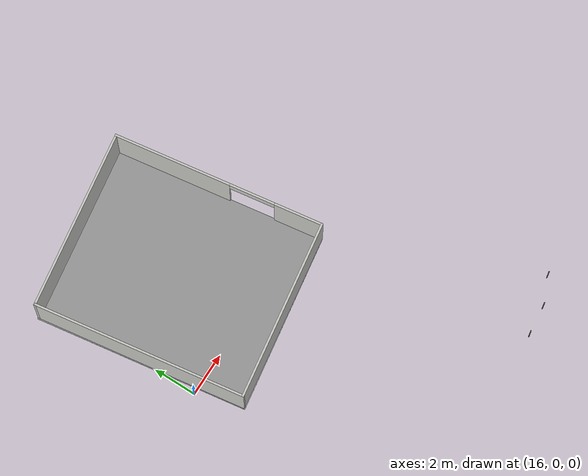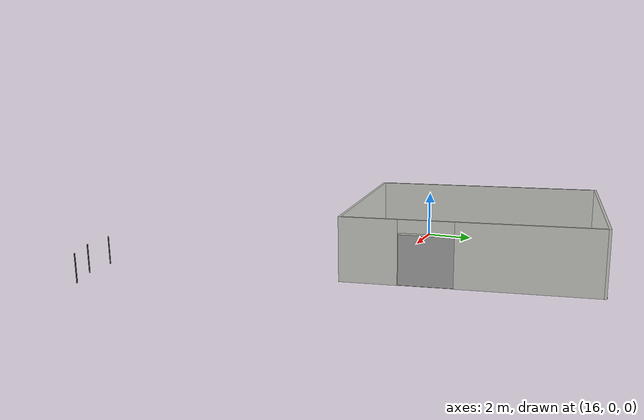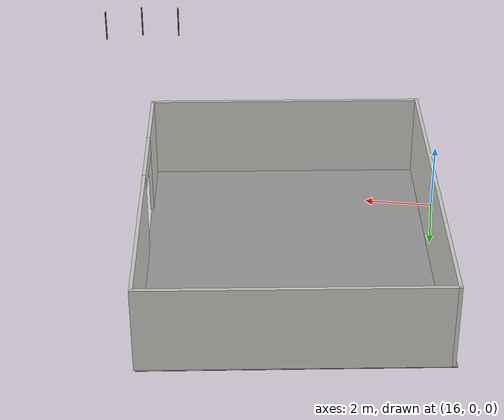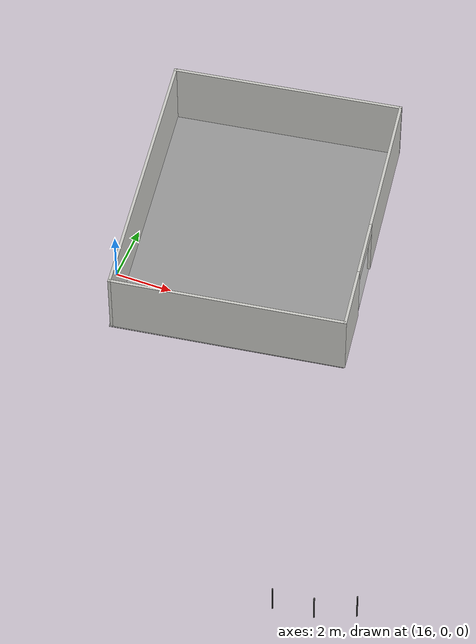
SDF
<sdf version="1.6">
 <world name="default">
  <model name="pole_63">
   <static>1</static>
   <pose>28.42 -10.01 0.575 0 -0 0</pose>
   <link name="link">
    <collision name="collision">
     <geometry><cylinder><length>1.15</length><radius>0.025</radius></cylinder></geometry>
    </collision>
    <visual name="visual">
     <geometry><cylinder><length>1.15</length><radius>0.025</radius></cylinder></geometry>
     <material>
      <script><uri>file://media/materials/scripts/gazebo.material</uri><name>Gazebo/Chrome</name></script>
      <shader type="vertex"><normal_map>__default__</normal_map></shader>
      <emissive>0.1 0.1 0.1 1</emissive>
      <specular>0.01 0.01 0.01 1</specular>
      <ambient>0.5 0.5 0.5 1</ambient>
      <diffuse>0.05 0.05 0.05 1</diffuse>
     </material>
    </visual>
   </link>
  </model>
  <model name="pole_72">
   <static>1</static>
   <pose>27.15 -10.55 0.575 0 -0 0</pose>
   <link name="link">
    <collision name="collision">
     <geometry><cylinder><length>1.15</length><radius>0.025</radius></cylinder></geometry>
    </collision>
    <visual name="visual">
     <geometry><cylinder><length>1.15</length><radius>0.025</radius></cylinder></geometry>
     <material>
      <script><uri>file://media/materials/scripts/gazebo.material</uri><name>Gazebo/Chrome</name></script>
      <shader type="vertex"><normal_map>__default__</normal_map></shader>
      <emissive>0.1 0.1 0.1 1</emissive>
      <specular>0.01 0.01 0.01 1</specular>
      <ambient>0.5 0.5 0.5 1</ambient>
      <diffuse>0.05 0.05 0.05 1</diffuse>
     </material>
    </visual>
   </link>
  </model>
  <model name="pole_81">
   <static>1</static>
   <pose>25.79 -10.7 0.575 0 -0 0</pose>
   <link name="link">
    <collision name="collision">
     <geometry><cylinder><length>1.15</length><radius>0.025</radius></cylinder></geometry>
    </collision>
    <visual name="visual">
     <geometry><cylinder><length>1.15</length><radius>0.025</radius></cylinder></geometry>
     <material>
      <script><uri>file://media/materials/scripts/gazebo.material</uri><name>Gazebo/Chrome</name></script>
      <shader type="vertex"><normal_map>__default__</normal_map></shader>
      <emissive>0.1 0.1 0.1 1</emissive>
      <specular>0.01 0.01 0.01 1</specular>
      <ambient>0.5 0.5 0.5 1</ambient>
      <diffuse>0.05 0.05 0.05 1</diffuse>
     </material>
    </visual>
   </link>
  </model>
  <model name="food_handling_unit">
   <pose>19.9734 3.27172 0 0 -0 1.71553</pose>
   <link name="Wall_5">
    <collision name="Wall_5_Collision">
     <geometry><box><size>9.70037 0.1 2.5</size></box></geometry>
     <pose>0 0 1.25 0 -0 0</pose>
    </collision>
    <visual name="Wall_5_Visual">
     <pose>0 0 1.25 0 -0 0</pose>
     <geometry><box><size>9.70037 0.1 2.5</size></box></geometry>
     <material>
      <script><uri>file://media/materials/scripts/gazebo.material</uri><name>Gazebo/CeilingTiled</name></script>
      <ambient>1 1 1 1</ambient>
     </material>
     <meta><layer>0</layer></meta>
    </visual>
    <pose>-0 4.05 0 0 -0 0</pose>
   </link>
   <link name="Wall_6">
    <collision name="Wall_6_Collision">
     <geometry><box><size>8.20047 0.1 2.5</size></box></geometry>
     <pose>0 0 1.25 0 -0 0</pose>
    </collision>
    <visual name="Wall_6_Visual">
     <pose>0 0 1.25 0 -0 0</pose>
     <geometry><box><size>8.20047 0.1 2.5</size></box></geometry>
     <material>
      <script><uri>file://media/materials/scripts/gazebo.material</uri><name>Gazebo/CeilingTiled</name></script>
      <ambient>1 1 1 1</ambient>
     </material>
     <meta><layer>0</layer></meta>
    </visual>
    <pose>4.8 -0 0 0 -0 -1.5708</pose>
   </link>
   <link name="Wall_7">
    <pose>-0 -4.05 0 0 -0 3.14159</pose>
    <visual name="Wall_7_Visual_0">
     <pose>-2.16197 0 1.25 0 -0 0</pose>
     <geometry><box><size>5.3757 0.1 2.5</size></box></geometry>
     <material>
      <script><uri>file://media/materials/scripts/gazebo.material</uri><name>Gazebo/CeilingTiled</name></script>
      <ambient>1 1 1 1</ambient>
     </material>
     <meta><layer>0</layer></meta>
    </visual>
    <collision name="Wall_7_Collision_0">
     <geometry><box><size>5.3757 0.1 2.5</size></box></geometry>
     <pose>-2.16197 0 1.25 0 -0 0</pose>
    </collision>
    <visual name="Wall_7_Visual_1">
     <pose>3.7301 0 1.25 0 -0 0</pose>
     <geometry><box><size>2.23943 0.1 2.5</size></box></geometry>
     <material>
      <script><uri>file://media/materials/scripts/gazebo.material</uri><name>Gazebo/CeilingTiled</name></script>
      <ambient>1 1 1 1</ambient>
     </material>
     <meta><layer>0</layer></meta>
    </visual>
    <collision name="Wall_7_Collision_1">
     <geometry><box><size>2.23943 0.1 2.5</size></box></geometry>
     <pose>3.7301 0 1.25 0 -0 0</pose>
    </collision>
    <visual name="Wall_7_Visual_2">
     <pose>1.56813 0 2.25 0 -0 0</pose>
     <geometry><box><size>2.0845 0.1 0.5</size></box></geometry>
     <material>
      <script><uri>file://media/materials/scripts/gazebo.material</uri><name>Gazebo/CeilingTiled</name></script>
      <ambient>1 1 1 1</ambient>
     </material>
     <meta><layer>0</layer></meta>
    </visual>
    <collision name="Wall_7_Collision_2">
     <geometry><box><size>2.0845 0.1 0.5</size></box></geometry>
     <pose>1.56813 0 2.25 0 -0 0</pose>
    </collision>
   </link>
   <link name="Wall_8">
    <collision name="Wall_8_Collision">
     <geometry><box><size>8.19953 0.1 2.5</size></box></geometry>
     <pose>0 0 1.25 0 -0 0</pose>
    </collision>
    <visual name="Wall_8_Visual">
     <pose>0 0 1.25 0 -0 0</pose>
     <geometry><box><size>8.19953 0.1 2.5</size></box></geometry>
     <material>
      <script><uri>file://media/materials/scripts/gazebo.material</uri><name>Gazebo/CeilingTiled</name></script>
      <ambient>1 1 1 1</ambient>
     </material>
     <meta><layer>0</layer></meta>
    </visual>
    <pose>-4.8 -0 0 0 -0 1.5708</pose>
   </link>
   <static>1</static>
  </model>
  <model name="fhu_floor">
   <link name="link_0">
    <visual name="visual">
     <geometry><box><size>9.75 8.2 0.01</size></box></geometry>
     <material>
      <lighting>1</lighting>
      <script><uri>file://media/materials/scripts/gazebo.material</uri><name>Gazebo/Grey</name></script>
      <shader type="vertex"><normal_map>__default__</normal_map></shader>
      <ambient>0.3 0.3 0.3 1</ambient>
      <diffuse>0.7 0.7 0.7 1</diffuse>
      <specular>0.01 0.01 0.01 1</specular>
      <emissive>0 0 0 1</emissive>
     </material>
    </visual>
    <collision name="collision"><geometry><box><size>9.75 8.2 0.001</size></box></geometry></collision>
   </link>
   <static>1</static>
   <pose>19.932 3.26262 0 0 -0 1.71778</pose>
  </model>
 </world>
</sdf>
